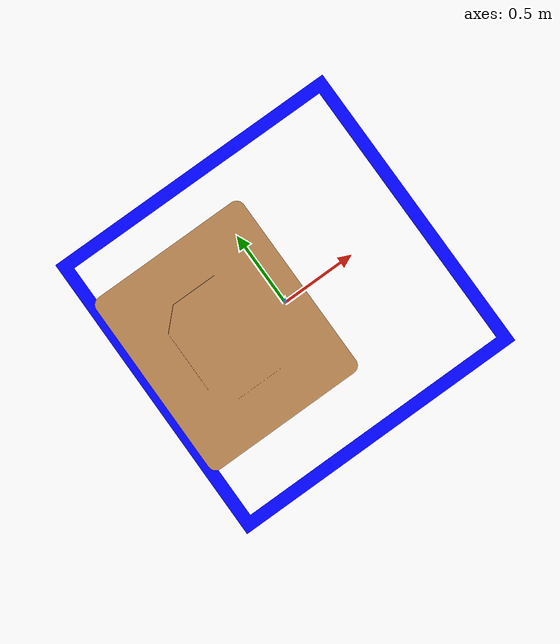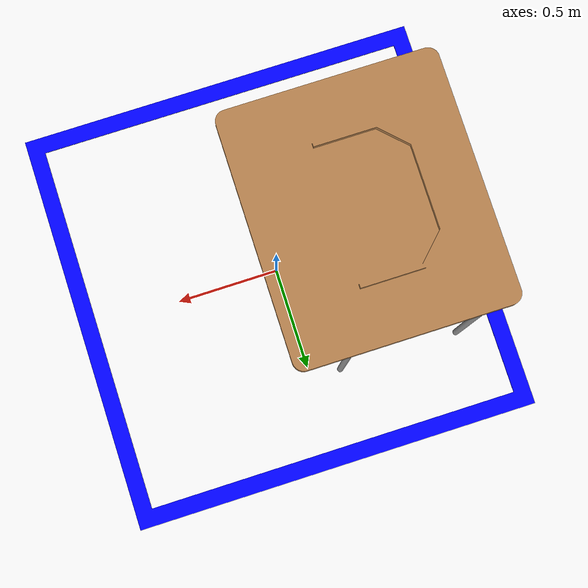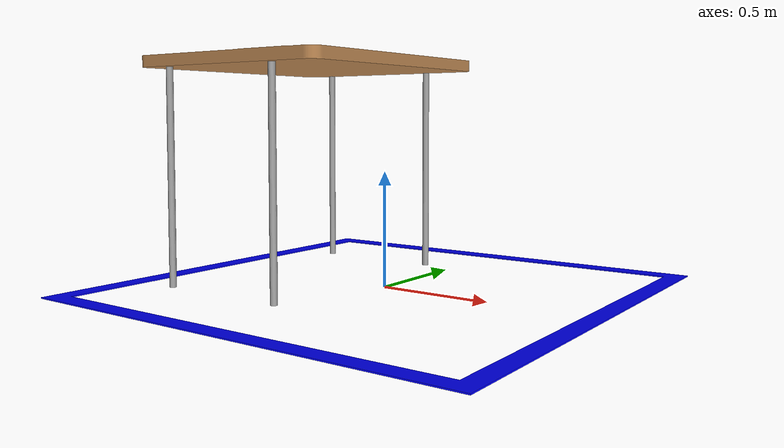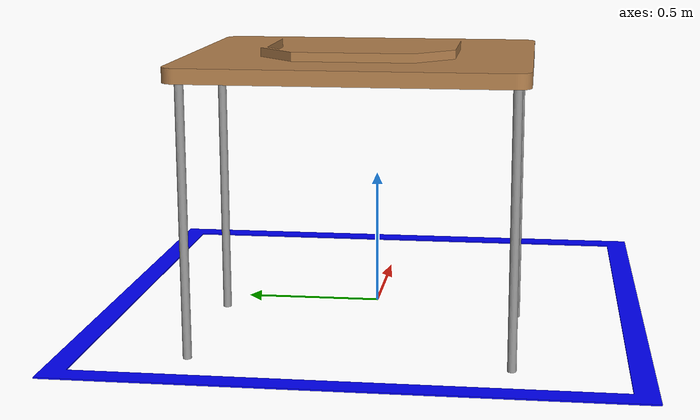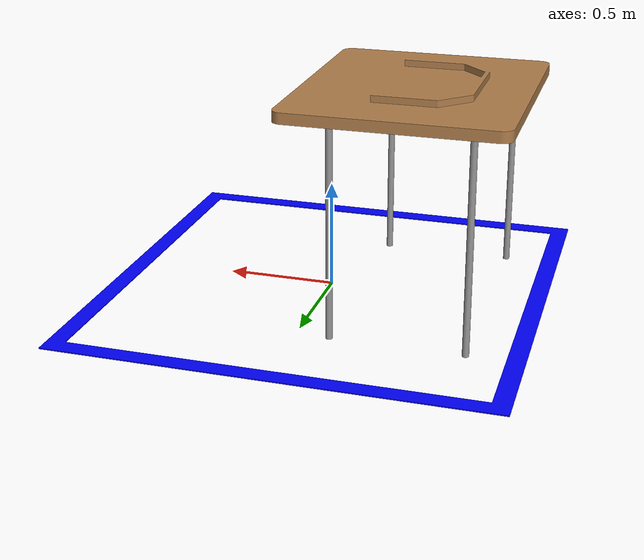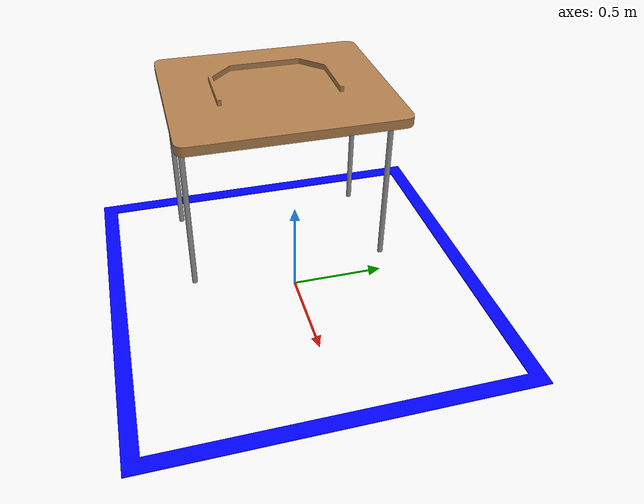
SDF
<?xml version="1.0" ?>
<sdf version="1.6">
  <model name="assembly_table">
    <static>true</static>

    <link name="assembly_table_link">
      <visual name="table_top">
        <geometry>
          <mesh>
            <uri>model://assembly_table/meshes/table_top.stl</uri>
          </mesh>
        </geometry>
        <material>
          <script>
            <uri>file://media/materials/scripts/gazebo.material</uri>
            <name>Gazebo/Wood</name>
          </script>
        </material>
      </visual>

      <visual name="leg1">
        <geometry>
          <mesh>
            <uri>model://assembly_table/meshes/leg1.stl</uri>
          </mesh>
        </geometry>
        <material>
          <ambient>0.6 0.6 0.6 1.0</ambient>
          <diffuse>0.6 0.6 0.6 1.0</diffuse>
        </material>
      </visual>

      <visual name="leg2">
        <geometry>
          <mesh>
            <uri>model://assembly_table/meshes/leg2.stl</uri>
          </mesh>
        </geometry>
        <material>
          <ambient>0.6 0.6 0.6 1.0</ambient>
          <diffuse>0.6 0.6 0.6 1.0</diffuse>
        </material>
      </visual>

      <visual name="leg3">
        <geometry>
          <mesh>
            <uri>model://assembly_table/meshes/leg3.stl</uri>
          </mesh>
        </geometry>
        <material>
          <ambient>0.6 0.6 0.6 1.0</ambient>
          <diffuse>0.6 0.6 0.6 1.0</diffuse>
        </material>
      </visual>

      <visual name="leg4">
        <geometry>
          <mesh>
            <uri>model://assembly_table/meshes/leg4.stl</uri>
          </mesh>
        </geometry>
        <material>
          <ambient>0.6 0.6 0.6 1.0</ambient>
          <diffuse>0.6 0.6 0.6 1.0</diffuse>
        </material>
      </visual>

      <visual name="tape">
        <geometry>
          <mesh>
            <uri>model://assembly_table/meshes/tape_outline.stl</uri>
          </mesh>
        </geometry>
        <material>
          <ambient>0.0 0.0 1.0 1.0</ambient>
          <diffuse>0.0 0.0 1.0 1.0</diffuse>
        </material>
      </visual>

      <collision name="collision">
        <geometry>
          <mesh>
            <uri>model://assembly_table/meshes/assembly_table_collision.stl</uri>
          </mesh>
        </geometry>
      </collision>

    </link>
  </model>
</sdf>
